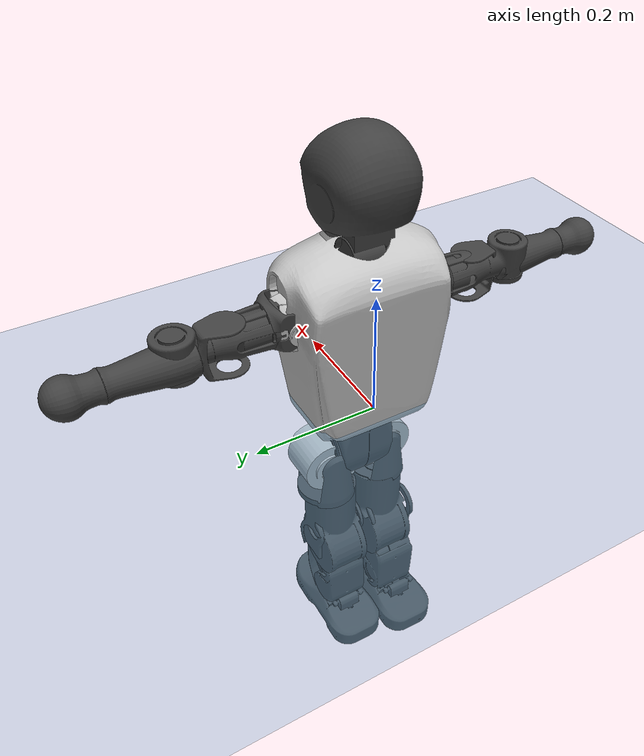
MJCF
<mujoco model="T1">
  <compiler angle="radian" assetdir="assets" balanceinertia="true" inertiafromgeom="false"/>

  <option timestep="0.005" density="1.2" viscosity="2e-05"/>

  <size nkey="1"/>

  <visual>
    <quality shadowsize="8192"/>
    <map shadowclip="0.5"/>
  </visual>

  <default>
    <default class="/">
      <joint armature="0.01" damping="0.01" frictionloss="0.1"/>
      <geom contype="0" conaffinity="0" group="1" solref="-1000 -80"/>
      <site size="0.01 0.005 0.005" group="5"/>
      <general forcelimited="true" biastype="affine" gainprm="25" biasprm="0 -25 -0.6"/>
      <default class="t1">
        <geom rgba="0.25 0.25 0.25 1"/>
        <default class="visual">
          <geom type="mesh" group="2"/>
        </default>
        <default class="collision">
          <geom group="3"/>
        </default>
        <default class="foot">
          <geom size="0.1115 0.05 0.015" type="box" condim="6" group="4" priority="1" solimp="0.015 1 0.015"/>
        </default>
        <default class="reward_collision_sphere">
          <geom group="5" rgba="1 0 0 1"/>
        </default>
      </default>
    </default>
  </default>

  <asset>
    <texture type="skybox" colorspace="auto" name="//unnamed_texture_0" builtin="gradient" rgb1="0.95 0.95 0.95" rgb2="0.95 0.95 0.95" width="100" height="600"/>
    <texture type="2d" colorspace="auto" name="texplane" builtin="checker" rgb1="0.345 0.575 0.748" rgb2="0.345 0.575 0.748" markrgb="1 1 1" width="512" height="512"/>
    <material name="MatPlane" class="/" texture="texplane" texuniform="true" texrepeat="2 2" specular="0.9"/>
    <mesh name="Trunk" class="/" file="Trunk.stl"/>
    <mesh name="H1" class="/" file="H1.stl"/>
    <mesh name="H2" class="/" file="H2.stl"/>
    <mesh name="AL1" class="/" file="AL1.stl"/>
    <mesh name="AL2" class="/" file="AL2.stl"/>
    <mesh name="AL3" class="/" file="AL3.stl"/>
    <mesh name="left_hand_link" class="/" file="left_hand_link.stl"/>
    <mesh name="AR1" class="/" file="AR1.stl"/>
    <mesh name="AR2" class="/" file="AR2.stl"/>
    <mesh name="AR3" class="/" file="AR3.stl"/>
    <mesh name="right_hand_link" class="/" file="right_hand_link.stl"/>
    <mesh name="Waist" class="/" file="Waist.stl"/>
    <mesh name="Hip_Pitch_Left" class="/" file="Hip_Pitch_Left.stl"/>
    <mesh name="Hip_Roll_Left" class="/" file="Hip_Roll_Left.stl"/>
    <mesh name="Hip_Yaw_Left" class="/" file="Hip_Yaw_Left.stl"/>
    <mesh name="Shank_Left" class="/" file="Shank_Left.stl"/>
    <mesh name="Ankle_Cross_Left" class="/" file="Ankle_Cross_Left.stl"/>
    <mesh name="left_foot_link" class="/" file="left_foot_link.stl"/>
    <mesh name="Hip_Pitch_Right" class="/" file="Hip_Pitch_Right.stl"/>
    <mesh name="Hip_Roll_Right" class="/" file="Hip_Roll_Right.stl"/>
    <mesh name="Hip_Yaw_Right" class="/" file="Hip_Yaw_Right.stl"/>
    <mesh name="Shank_Right" class="/" file="Shank_Right.stl"/>
    <mesh name="Ankle_Cross_Right" class="/" file="Ankle_Cross_Right.stl"/>
    <mesh name="right_foot_link" class="/" file="right_foot_link.stl"/>
  </asset>

  <worldbody>
    <geom name="floor" class="/" size="100 100 0.125" type="plane" group="0" material="MatPlane"/>
    <light name="toplight_shadow" class="/" pos="0 0 5" dir="0.0990148 0.0990148 -0.990148" type="directional" ambient="0.04 0.04 0.04" diffuse="0.55 0.55 0.55" specular="0.12 0.12 0.12"/>
    <light name="toplight_fill" class="/" pos="0 0 5" dir="0.0990148 0.0990148 -0.990148" type="directional" castshadow="false" ambient="0.04 0.04 0.04" diffuse="0.3 0.3 0.3" specular="0.08 0.08 0.08"/>
    <body name="trunk" childclass="t1" pos="-0.00191152 0.00314539 -0.0017078" quat="0.99999 0.00424745 0.000406869 0.000974911">
      <inertial pos="0.0485307 0.00659077 0.08286" quat="0.999978 -0.00621659 -0.0019859 0.000762694" mass="4.35486" diaginertia="0.0253358 0.00447007 0.0164449"/>
      <joint name="//unnamed_joint_0" type="free" armature="0" damping="0" frictionloss="0"/>
      <geom name="//unnamed_geom_1" class="visual" rgba="0.76 0.76 0.76 1" mesh="Trunk"/>
      <geom name="//unnamed_geom_2" class="collision" size="0.052299 0.069732 0.104598" pos="0.0462522 0 0.0914336" type="box"/>
      <geom name="//unnamed_geom_3" class="reward_collision_sphere" size="0.0801918" pos="0.0462522 0 0.0761947"/>
      <geom name="//unnamed_geom_4" class="reward_collision_sphere" size="0.0104598" pos="0.0462522 0.0475272 0"/>
      <geom name="//unnamed_geom_5" class="reward_collision_sphere" size="0.0104598" pos="0.0462522 -0.0475272 0"/>
      <geom name="//unnamed_geom_6" class="reward_collision_sphere" size="0.0104598" pos="0.0462522 0.0598284 0.13715"/>
      <geom name="//unnamed_geom_7" class="reward_collision_sphere" size="0.0104598" pos="0.0462522 -0.0598284 0.13715"/>
      <site name="imu" pos="-0.0265169 0.00106874 0.0266637" size="0.0069732"/>
      <camera name="track" pos="0 -1.11829 0" quat="0.707107 0.707107 0 0" mode="trackcom"/>
      <camera name="ego_camera" pos="0.0940461 0 0.320018" quat="-0.5 -0.5 0.5 0.5"/>
      <body name="H1" pos="0.0492488 -0.00294 0.185055" quat="0.999999 -0.000998347 0.000259788 -0.000101453">
        <inertial pos="0.00306028 -0.0103995 0.0410693" quat="0.788778 -0.000411493 -0.00800088 0.614626" mass="0.158455" diaginertia="6.96153e-05 1.3593e-05 4.63602e-05"/>
        <joint name="AAHead_yaw" pos="0 0 0" axis="-0.0122264 0.0412604 0.999074" range="-1.56013 1.55445" armature="0.00846453" damping="0.00880287" frictionloss="0.0675659"/>
        <geom name="//unnamed_geom_8" class="visual" mesh="H1"/>
        <body name="H2" pos="-0.00560547 -0.00891424 0.0513267" quat="1 0.000192864 6.4141e-05 0.000484791">
          <inertial pos="0.000337956 -0.00747724 0.0774901" quat="0.988715 0.10229 -0.0772394 -0.0775474" mass="0.210492" diaginertia="0.000490371 0.000101948 0.000432111"/>
          <joint name="Head_pitch" pos="0 0 0" axis="-0.00159008 -0.999948 -0.0100923" range="-1.25398 0.356607" armature="0.0101015" damping="0.00678116" frictionloss="0.0322171"/>
          <geom name="//unnamed_geom_9" class="visual" mesh="H2"/>
          <geom name="//unnamed_geom_10" class="collision" size="0.0557856" pos="0.00770869 0 0.0838142"/>
          <geom name="//unnamed_geom_11" class="reward_collision_sphere" size="0.0627588" pos="0.0154174 0 0.0761947"/>
        </body>
      </body>
      <body name="AL1" pos="0.0474325 0.0631894 0.176149" quat="1 -0.000285011 0.000442096 -0.000225267">
        <inertial pos="0.00846852 0.0268333 -0.000880779" quat="0.500821 0.492169 -0.510948 0.495864" mass="0.174141" diaginertia="0.00037411 7.01639e-05 7.98762e-05"/>
        <joint name="Left_Shoulder_Pitch" pos="0 0 0" axis="-0.0423936 0.998952 0.0172674" stiffness="0.00104094" range="-3.26454 1.2854" armature="0.00677282" damping="0.00927176" frictionloss="0.0739623"/>
        <geom name="//unnamed_geom_12" class="visual" rgba="0.76 0.76 0.76 1" mesh="AL1"/>
        <body name="AL2" pos="0.00271043 0.0301067 0.00532436" quat="1 0.000121485 7.03078e-05 0.000177497">
          <inertial pos="-0.000299394 0.0245459 0.00720459" quat="0.468256 0.515891 -0.510714 0.50375" mass="0.0555017" diaginertia="0.000108087 1.8781e-05 4.50013e-05"/>
          <joint name="Left_Shoulder_Roll" pos="0 0 0" axis="-0.999897 -0.00138642 0.014274" stiffness="0.00116094" range="-1.60788 1.76668" armature="0.00627024" damping="0" frictionloss="0.0655708"/>
          <geom name="//unnamed_geom_13" class="visual" mesh="AL2"/>
          <body name="AL3" pos="-0.000302999 0.0367309 -0.00197699" quat="0.999999 -0.00052527 0.000580322 -0.000679943">
            <inertial pos="0.00392794 0.0476976 0.00106272" quat="0.712557 0.700138 -0.0447225 0.00834813" mass="0.348455" diaginertia="0.00333913 0.000692474 0.000178982"/>
            <joint name="Left_Elbow_Pitch" pos="0 0 0" axis="0.0073454 -0.999972 -0.00109192" stiffness="0.00207066" range="-2.25352 2.24648" armature="0.0072253" damping="0" frictionloss="0.0361013"/>
            <geom name="//unnamed_geom_14" class="visual" mesh="AL3"/>
            <geom name="//unnamed_geom_15" class="collision" size="0.0209196 0.052299" pos="0 0.0279572 0" quat="0.707105 0.707108 0 0" type="cylinder"/>
            <geom name="//unnamed_geom_16" class="reward_collision_sphere" size="0.0251035"/>
            <body name="left_hand_link" pos="-0.00772696 0.0775338 -0.0046753" quat="1 -0.00015802 0.00035354 1.62779e-05">
              <inertial pos="-0.00793419 0.0665665 0.00785532" quat="0.710762 0.703424 -0.00307064 -0.00157099" mass="0.110745" diaginertia="0.00223908 0.000420227 5.12044e-05"/>
              <joint name="Left_Elbow_Yaw" pos="0 0 0" axis="0.000564883 -0.00772857 0.99997" stiffness="0.0110863" range="-2.39895 -0.00338229" armature="0.00516396" damping="0" frictionloss="0.0707938"/>
              <geom name="//unnamed_geom_17" class="visual" mesh="left_hand_link"/>
              <geom name="//unnamed_geom_18" class="collision" size="0.0209196 0.0610155" pos="0 0.0726887 0" quat="0.707105 0.707108 0 0" type="cylinder"/>
              <geom name="//unnamed_geom_19" class="reward_collision_sphere" size="0.034866"/>
              <geom name="//unnamed_geom_20" class="reward_collision_sphere" size="0.0244062" pos="0 0.0615059 0"/>
              <geom name="//unnamed_geom_21" class="reward_collision_sphere" size="0.0244062" pos="0 0.120216 0"/>
            </body>
          </body>
        </body>
      </body>
      <body name="AR1" pos="0.038752 -0.0573239 0.167445" quat="0.999987 0.00156634 -0.00290578 -0.00391556">
        <inertial pos="-0.000451632 -0.0232068 -0.0022884" quat="0.508639 0.49651 -0.505735 0.488873" mass="0.158735" diaginertia="0.000354461 6.11776e-05 6.81166e-05"/>
        <joint name="Right_Shoulder_Pitch" pos="0 0 0" axis="-0.000302895 -1 0.000284734" range="-1.31421 3.32358" armature="0.00736621" damping="0" frictionloss="0.0782541"/>
        <geom name="//unnamed_geom_22" class="visual" rgba="0.76 0.76 0.76 1" mesh="AR1"/>
        <body name="AR2" pos="-0.0030498 -0.0222812 0.00907961" quat="0.999994 -0.00204018 -0.00269499 -0.000560933">
          <inertial pos="0.00467108 -0.0228974 0.00140692" quat="0.512448 0.499504 -0.520685 0.465597" mass="0.0582111" diaginertia="0.000117084 1.92628e-05 4.77182e-05"/>
          <joint name="Right_Shoulder_Roll" pos="0 0 0" axis="-0.999476 -0.00269092 0.0322601" stiffness="0.0226369" range="-1.68475 1.62981" armature="0.00681954" damping="0.038492" frictionloss="0.064981"/>
          <geom name="//unnamed_geom_23" class="visual" mesh="AR2"/>
          <body name="AR3" pos="0.0039872 -0.0324548 -0.00272256" quat="0.999992 -0.00358964 0.000354391 -0.00144746">
            <inertial pos="-0.0107442 -0.0455602 -0.0018458" quat="0.70847 0.705733 -0.000510941 -0.00332942" mass="0.336483" diaginertia="0.00305186 0.000625141 0.000145539"/>
            <joint name="Right_Elbow_Pitch" pos="0 0 0" axis="-0.000705194 0.999831 0.018357" range="-2.23614 2.49214" armature="0.00707724" damping="0.00220235" frictionloss="0.059186"/>
            <geom name="//unnamed_geom_24" class="visual" mesh="AR3"/>
            <geom name="//unnamed_geom_25" class="collision" size="0.0209196 0.052299" pos="0 -0.0279572 0" quat="0.707105 0.707108 0 0" type="cylinder"/>
            <geom name="//unnamed_geom_26" class="reward_collision_sphere" size="0.0251035"/>
            <body name="right_hand_link" pos="0.00270839 -0.0773634 -0.0079087" quat="0.999994 -0.0012894 -0.00263337 0.00185849">
              <inertial pos="-0.00973913 -0.0623687 0.00856039" quat="0.703351 0.710834 0.00201003 -0.00292368" mass="0.124323" diaginertia="0.00285073 0.000531454 5.54505e-05"/>
              <joint name="Right_Elbow_Yaw" pos="0 0 0" axis="0.00223204 -0.00852787 0.999961" range="0.0269449 2.59594" armature="0.00742485" damping="0.00626122" frictionloss="0.0707624"/>
              <geom name="//unnamed_geom_27" class="visual" mesh="right_hand_link"/>
              <geom name="//unnamed_geom_28" class="collision" size="0.0209196 0.0610155" pos="0 -0.0726887 0" quat="0.707105 0.707108 0 0" type="cylinder"/>
              <geom name="//unnamed_geom_29" class="reward_collision_sphere" size="0.034866"/>
              <geom name="//unnamed_geom_30" class="reward_collision_sphere" size="0.0244062" pos="0 -0.0615059 0"/>
              <geom name="//unnamed_geom_31" class="reward_collision_sphere" size="0.0244062" pos="0 -0.120216 0"/>
            </body>
          </body>
        </body>
      </body>
      <body name="Waist" pos="0.0555186 0.00782266 -0.0912271" quat="0.999998 0.000909845 -0.000212976 0.00167915">
        <inertial pos="0.00258716 -0.00655853 0.00453374" quat="0.987767 0.00635128 -0.155105 0.0147692" mass="1.00476" diaginertia="0.00155384 0.000319731 0.00138425"/>
        <joint name="Waist" pos="0 0 0" axis="0.004127 0.00592337 0.999974" stiffness="0.00852342" range="-1.51905 1.60984" armature="0.00770206" damping="0.0522978" frictionloss="0.0557306"/>
        <geom name="//unnamed_geom_32" class="visual" mesh="Waist"/>
        <body name="Hip_Pitch_Left" pos="-0.00376828 0.0595994 0.00172088" quat="1 -6.98844e-05 0.000437733 0.000219316">
          <inertial pos="0.00304672 -0.00309435 -0.00565124" quat="0.976128 0.216627 0.0143458 0.00645636" mass="0.366248" diaginertia="0.000510963 8.22054e-05 0.000335715"/>
          <joint name="Left_Hip_Pitch" pos="0 0 0" axis="-0.00205299 0.999952 -0.00955489" range="-1.78365 1.41809" armature="0.007195" damping="0.0338494" frictionloss="0.0758563"/>
          <geom name="//unnamed_geom_33" class="visual" rgba="0.76 0.76 0.76 1" mesh="Hip_Pitch_Left"/>
          <body name="Hip_Roll_Left" pos="-0.00834781 -0.00378632 -0.0106998" quat="1 0.00036568 -0.000357615 0.000618127">
            <inertial pos="0.000837623 0.000280077 -0.0338414" quat="0.707144 -0.00261325 5.59061e-05 0.707065" mass="0.1162" diaginertia="0.000392613 8.19907e-05 0.000132427"/>
            <joint name="Left_Hip_Roll" pos="0 0 0" axis="-0.999931 0.0059808 0.0100741" stiffness="0.0399913" range="-1.52534 0.0258362" armature="0.00760476" damping="0.00509939" frictionloss="0.0751143"/>
            <geom name="//unnamed_geom_34" class="visual" mesh="Hip_Roll_Left"/>
            <geom name="//unnamed_geom_35" class="reward_collision_sphere" size="0.0383526"/>
            <body name="Hip_Yaw_Left" pos="0.00198488 -0.00959393 -0.0732046" quat="1 -0.000297941 0.0001684 5.30292e-05">
              <inertial pos="-0.00186134 -0.00181265 -0.0694534" quat="0.670743 -0.0457717 -0.0281163 0.739742" mass="0.763403" diaginertia="0.00664257 0.00148689 0.000615215"/>
              <joint name="Left_Hip_Yaw" pos="0 0 0" axis="-0.000226774 -0.000782265 -1" range="-1.03728 0.789272" armature="0.00537391" damping="0.0628837" frictionloss="0.0727518"/>
              <geom name="//unnamed_geom_36" class="visual" mesh="Hip_Yaw_Left"/>
              <geom name="//unnamed_geom_37" class="collision" size="0.034866 0.0557856" type="cylinder"/>
              <body name="Shank_Left" pos="-0.00722397 -0.00214502 -0.0940239" quat="0.999999 -0.000803639 -0.00101248 0.000528238">
                <inertial pos="-0.00125656 -0.000328933 -0.087582" quat="0.997487 0.00277956 -0.0228239 0.0670102" mass="0.558223" diaginertia="0.00908252 0.0020353 0.000534403"/>
                <joint name="Left_Knee_Pitch" pos="0 0 0" axis="-0.000619825 1 0.000572991" range="-0.0781265 2.33556" armature="0.00692611" damping="0.00165153" frictionloss="0.0720444"/>
                <geom name="//unnamed_geom_38" class="visual" mesh="Shank_Left"/>
                <geom name="//unnamed_geom_39" class="collision" size="0.034866 0.052299" pos="0 0 -0.0914336" type="cylinder"/>
                <geom name="//unnamed_geom_40" class="reward_collision_sphere" size="0.0453258"/>
                <body name="Ankle_Cross_Left" pos="0.000628424 -0.00140857 -0.20689" quat="1 4.78907e-05 6.08707e-06 -4.62141e-05">
                  <inertial pos="0.00588353 -0.00875122 -0.00541698" quat="0.440034 0.55388 0.549733 0.444276" mass="0.0268755" diaginertia="7.63904e-06 1.58299e-06 3.01025e-06"/>
                  <joint name="Left_Ankle_Pitch" pos="0 0 0" axis="-0.0189526 0.999406 -0.0287753" range="-0.776826 0.353897" armature="0.00980283" damping="0.000127556" frictionloss="0.05599"/>
                  <geom name="//unnamed_geom_41" class="visual" mesh="Ankle_Cross_Left"/>
                  <body name="left_foot_link" pos="0.000693334 -0.00466683 -0.0168253" quat="0.999988 0.00335103 1.84443e-05 -0.00358429">
                    <inertial pos="0.00846582 0.00192424 -0.0052364" quat="-0.00299388 0.612519 0.0143491 0.79032" mass="0.23947" diaginertia="0.00068209 0.000127633 0.000502358"/>
                    <joint name="Left_Ankle_Roll" pos="0 0 0" axis="-0.999993 -0.000723073 0.00366251" stiffness="0.0364403" range="-0.277794 0.617628" armature="0.00552767" damping="0" frictionloss="0.0995927"/>
                    <geom name="//unnamed_geom_42" class="visual" mesh="left_foot_link"/>
                    <geom name="left_foot" class="foot" size="0.0894582 0.0409273 0.00960691" pos="0.00770869 0 -0.0114292"/>
                    <geom name="//unnamed_geom_44" class="reward_collision_sphere" size="0.0362606" pos="0.00770869 0 -0.0114292"/>
                    <geom name="//unnamed_geom_45" class="reward_collision_sphere" size="0.0209196" pos="0.0732326 -0.0128603 -0.0114292"/>
                    <geom name="//unnamed_geom_46" class="reward_collision_sphere" size="0.0209196" pos="-0.0539609 -0.0128603 -0.0114292"/>
                    <site name="left_foot" class="foot" pos="0.00770869 0 -0.0114292" size="0.0069732"/>
                  </body>
                </body>
              </body>
            </body>
          </body>
        </body>
        <body name="Hip_Pitch_Right" pos="0.00297839 -0.0536275 -0.001405" quat="0.999992 0.00287845 -0.00256945 -0.000617441">
          <inertial pos="-0.00197877 0.0102688 -0.0181107" quat="0.973219 -0.229462 0.00985855 -0.0097145" mass="0.346634" diaginertia="0.000465501 7.33185e-05 0.00029381"/>
          <joint name="Right_Hip_Pitch" pos="0 0 0" axis="-0.00174564 -0.999998 -0.000713285" range="-1.53776 1.82231" armature="0.00494331" damping="0.0118802" frictionloss="0.0774065"/>
          <geom name="//unnamed_geom_47" class="visual" rgba="0.76 0.76 0.76 1" mesh="Hip_Pitch_Right"/>
          <body name="Hip_Roll_Right" pos="-0.00926003 0.00740176 -0.00955196" quat="1 0.000237772 0.000160356 -0.000165451">
            <inertial pos="-0.000411836 -0.0017817 -0.0464836" quat="0.706699 -0.00905828 -0.0150185 0.707297" mass="0.110473" diaginertia="0.000448474 7.26903e-05 0.000123282"/>
            <joint name="Right_Hip_Roll" pos="0 0 0" axis="-0.999945 -0.00999759 -0.0030624" range="-0.205927 1.76957" armature="0.00756177" damping="0.0503356" frictionloss="0.102227"/>
            <geom name="//unnamed_geom_48" class="visual" mesh="Hip_Roll_Right"/>
            <geom name="//unnamed_geom_49" class="reward_collision_sphere" size="0.0383526"/>
            <body name="Hip_Yaw_Right" pos="-0.00873457 0.00268032 -0.0668796" quat="0.999996 -0.0008971 0.00254939 0.00047046">
              <inertial pos="-0.00656846 0.00490584 -0.0729888" quat="0.702109 0.00653786 -0.00163153 0.712038" mass="0.722295" diaginertia="0.00792699 0.00132378 0.000751482"/>
              <joint name="Right_Hip_Yaw" pos="0 0 0" axis="-0.0068041 -0.0522046 -0.998613" range="-1.04742 0.964717" armature="0.00947044" damping="0" frictionloss="0.075734"/>
              <geom name="//unnamed_geom_50" class="visual" mesh="Hip_Yaw_Right"/>
              <geom name="//unnamed_geom_51" class="collision" size="0.034866 0.0557856" type="cylinder"/>
              <body name="Shank_Right" pos="-0.0197399 -0.00848605 -0.100146" quat="0.999998 0.000592702 0.00035362 -0.00208679">
                <inertial pos="-0.00802584 0.00285385 -0.0935229" quat="0.998529 -0.0417621 -0.0318055 -0.0135759" mass="0.640264" diaginertia="0.00899763 0.00192559 0.000488335"/>
                <joint name="Right_Knee_Pitch" pos="0 0 0" axis="-0.0235052 -0.999352 0.0272426" stiffness="0.0467554" range="-2.35972 -0.10131" armature="0.00694484" damping="0" frictionloss="0.0632614"/>
                <geom name="//unnamed_geom_52" class="visual" mesh="Shank_Right"/>
                <geom name="//unnamed_geom_53" class="collision" size="0.034866 0.052299" pos="0 0 -0.0914336" type="cylinder"/>
                <geom name="//unnamed_geom_54" class="reward_collision_sphere" size="0.0453258"/>
                <body name="Ankle_Cross_Right" pos="-0.000684049 -0.00735114 -0.206477" quat="0.999993 0.00204124 0.00136904 -0.0028752">
                  <inertial pos="-0.0048377 -0.00653134 -0.00845092" quat="0.442423 0.551937 0.551145 0.442569" mass="0.0251" diaginertia="9.03445e-06 1.41125e-06 3.15482e-06"/>
                  <joint name="Right_Ankle_Pitch" pos="0 0 0" axis="-0.00217542 -0.999646 -0.0265177" range="-0.133027 0.82952" armature="0.00809164" damping="0.00110777" frictionloss="0.0658721"/>
                  <geom name="//unnamed_geom_55" class="visual" mesh="Ankle_Cross_Right"/>
                  <body name="right_foot_link" pos="-0.00614032 -0.00265264 -0.0114441" quat="0.999999 -0.000286999 0.000747097 0.000621731">
                    <inertial pos="-0.000184899 -0.0065445 -0.00667174" quat="-0.000945944 0.613979 0.0125223 0.789222" mass="0.182945" diaginertia="0.000670849 0.000119056 0.000505073"/>
                    <joint name="Right_Ankle_Roll" pos="0 0 0" axis="-1 -0.000292125 0.000759217" range="-0.456358 0.516824" armature="0.0073343" damping="0" frictionloss="0.103615"/>
                    <geom name="//unnamed_geom_56" class="visual" mesh="right_foot_link"/>
                    <geom name="right_foot" class="foot" size="0.0989228 0.0345718 0.0102314" pos="0.00770869 0 -0.0114292"/>
                    <geom name="//unnamed_geom_58" class="reward_collision_sphere" size="0.0278928"/>
                    <geom name="//unnamed_geom_59" class="reward_collision_sphere" size="0.0209196" pos="0.00770869 0 -0.0114292"/>
                    <geom name="//unnamed_geom_60" class="reward_collision_sphere" size="0.0209196" pos="0.0732326 0.0128603 -0.0114292"/>
                    <geom name="//unnamed_geom_61" class="reward_collision_sphere" size="0.0209196" pos="-0.0539609 0.0128603 -0.0114292"/>
                    <site name="right_foot" class="foot" pos="0.00770869 0 -0.0114292" size="0.0069732"/>
                  </body>
                </body>
              </body>
            </body>
          </body>
        </body>
      </body>
    </body>
  </worldbody>

  <contact>
    <pair class="/" geom1="floor" geom2="left_foot" name="//unnamed_contact_0"/>
    <pair class="/" geom1="floor" geom2="right_foot" name="//unnamed_contact_1"/>
  </contact>

  <actuator>
    <general name="AAHead_yaw" class="/" joint="AAHead_yaw" forcerange="-5.04374 5.04374" gainprm="21.7858" biasprm="0 -21.7858 -0.379279"/>
    <general name="Head_pitch" class="/" joint="Head_pitch" forcerange="-4.72688 4.72688" gainprm="21.7858" biasprm="0 -21.7858 -0.379279"/>
    <general name="Left_Shoulder_Pitch" class="/" joint="Left_Shoulder_Pitch" forcerange="-17.6802 17.6802" gainprm="21.7858" biasprm="0 -21.7858 -0.379279"/>
    <general name="Left_Shoulder_Roll" class="/" joint="Left_Shoulder_Roll" forcerange="-11.8537 11.8537" gainprm="21.7858" biasprm="0 -21.7858 -0.379279"/>
    <general name="Left_Elbow_Pitch" class="/" joint="Left_Elbow_Pitch" forcerange="-14.0121 14.0121" gainprm="21.7858" biasprm="0 -21.7858 -0.379279"/>
    <general name="Left_Elbow_Yaw" class="/" joint="Left_Elbow_Yaw" forcerange="-11.9704 11.9704" gainprm="21.7858" biasprm="0 -21.7858 -0.379279"/>
    <general name="Right_Shoulder_Pitch" class="/" joint="Right_Shoulder_Pitch" forcerange="-12.3256 12.3256" gainprm="21.7858" biasprm="0 -21.7858 -0.379279"/>
    <general name="Right_Shoulder_Roll" class="/" joint="Right_Shoulder_Roll" forcerange="-13.4133 13.4133" gainprm="21.7858" biasprm="0 -21.7858 -0.379279"/>
    <general name="Right_Elbow_Pitch" class="/" joint="Right_Elbow_Pitch" forcerange="-14.3266 14.3266" gainprm="21.7858" biasprm="0 -21.7858 -0.379279"/>
    <general name="Right_Elbow_Yaw" class="/" joint="Right_Elbow_Yaw" forcerange="-14.2649 14.2649" gainprm="21.7858" biasprm="0 -21.7858 -0.379279"/>
    <general name="Waist" class="/" joint="Waist" forcerange="-23.7657 23.7657" gainprm="21.7858" biasprm="0 -21.7858 -0.379279"/>
    <general name="Left_Hip_Pitch" class="/" joint="Left_Hip_Pitch" forcerange="-29.1113 29.1113" gainprm="21.7858" biasprm="0 -21.7858 -0.379279"/>
    <general name="Left_Hip_Roll" class="/" joint="Left_Hip_Roll" forcerange="-23.4744 23.4744" gainprm="21.7858" biasprm="0 -21.7858 -0.379279"/>
    <general name="Left_Hip_Yaw" class="/" joint="Left_Hip_Yaw" forcerange="-23.595 23.595" gainprm="21.7858" biasprm="0 -21.7858 -0.379279"/>
    <general name="Left_Knee_Pitch" class="/" joint="Left_Knee_Pitch" forcerange="-38.3498 38.3498" gainprm="21.7858" biasprm="0 -21.7858 -0.379279"/>
    <general name="Left_Ankle_Pitch" class="/" joint="Left_Ankle_Pitch" forcerange="-9.0671 9.0671" gainprm="21.7858" biasprm="0 -21.7858 -0.379279"/>
    <general name="Left_Ankle_Roll" class="/" joint="Left_Ankle_Roll" forcerange="-13.621 13.621" gainprm="21.7858" biasprm="0 -21.7858 -0.379279"/>
    <general name="Right_Hip_Pitch" class="/" joint="Right_Hip_Pitch" forcerange="-33.732 33.732" gainprm="21.7858" biasprm="0 -21.7858 -0.379279"/>
    <general name="Right_Hip_Roll" class="/" joint="Right_Hip_Roll" forcerange="-14.5226 14.5226" gainprm="21.7858" biasprm="0 -21.7858 -0.379279"/>
    <general name="Right_Hip_Yaw" class="/" joint="Right_Hip_Yaw" forcerange="-25.6854 25.6854" gainprm="21.7858" biasprm="0 -21.7858 -0.379279"/>
    <general name="Right_Knee_Pitch" class="/" joint="Right_Knee_Pitch" forcerange="-49.6665 49.6665" gainprm="21.7858" biasprm="0 -21.7858 -0.379279"/>
    <general name="Right_Ankle_Pitch" class="/" joint="Right_Ankle_Pitch" forcerange="-12.9329 12.9329" gainprm="21.7858" biasprm="0 -21.7858 -0.379279"/>
    <general name="Right_Ankle_Roll" class="/" joint="Right_Ankle_Roll" forcerange="-7.67436 7.67436" gainprm="21.7858" biasprm="0 -21.7858 -0.379279"/>
  </actuator>

  <sensor>
    <gyro site="imu" name="imu_angular_velocity"/>
    <velocimeter site="imu" name="imu_linear_velocity"/>
    <framelinvel objtype="site" objname="left_foot" name="left_foot_global_linear_velocity"/>
    <framelinvel objtype="site" objname="right_foot" name="right_foot_global_linear_velocity"/>
  </sensor>

  <keyframe>
    <key name="home" qpos="0 0 0.6385 1 0 0 0 0 0 0 1.4 0 -0.4 0 -1.4 0 0.4 0 -0.4 0 0 0.8 -0.4 0 0.4 0 0 -0.8 0.4 0"/>
  </keyframe>
</mujoco>
